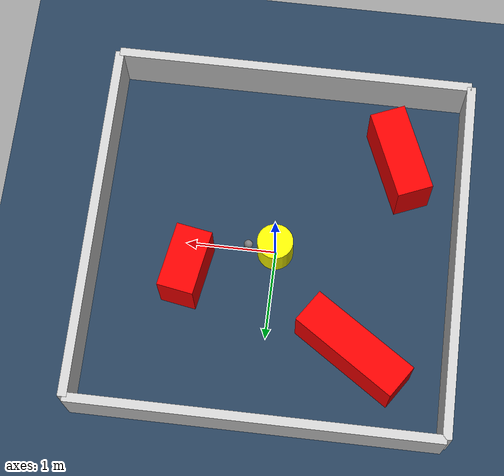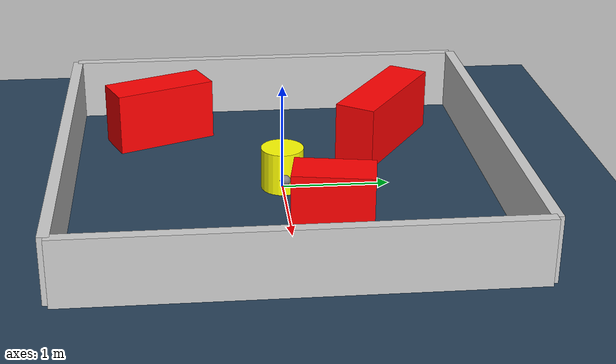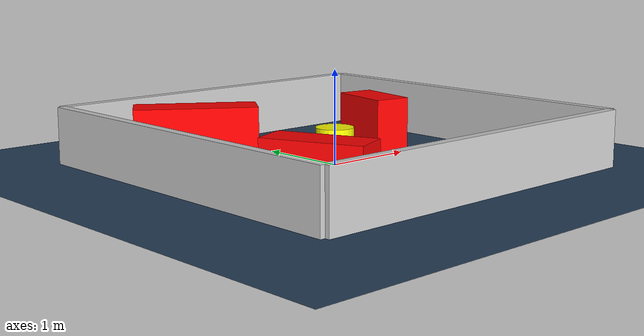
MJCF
<?xml version="1.0" ?>
<mujoco model="generated_environment">
  <option timestep="0.01" integrator="RK4" cone="elliptic"/>
  <default>
    <geom density="1"/>
  </default>
  <asset>
    <texture builtin="gradient" height="3072" rgb1="0.3 0.5 0.7" rgb2="0 0 0" type="skybox" width="512"/>
    <texture builtin="checker" height="300" mark="edge" markrgb="0.8 0.8 0.8" name="groundplane" rgb1="0.2 0.3 0.4" rgb2="0.1 0.2 0.3" type="2d" width="300"/>
    <material name="groundplane" reflectance="0.2" texrepeat="5 5" texture="groundplane" texuniform="true"/>
    <material name="robot" rgba="0.0 1.0 0.0 1"/>
  </asset>
  <worldbody>
    <light dir="0 0 -1" directional="true" pos="0 0 1.5"/>
    <geom condim="4" friction="1.0 0.005 0.001" material="groundplane" name="floor" size="0 0 0.05" type="plane"/>
    <body name="walls">
      <geom name="wall_1" condim="4" pos="-2.0 0.0 0.3" rgba="0.800000011920929 0.800000011920929 0.800000011920929 1.0" size="0.05 2.0 0.3" type="box"/>
      <geom name="wall_2" condim="4" pos="2.0 0.0 0.3" rgba="0.800000011920929 0.800000011920929 0.800000011920929 1.0" size="0.05 2.0 0.3" type="box"/>
      <geom name="wall_3" condim="4" pos="0.0 -2.0 0.3" rgba="0.800000011920929 0.800000011920929 0.800000011920929 1.0" size="2.0 0.05 0.3" type="box"/>
      <geom name="wall_4" condim="4" pos="0.0 2.0 0.3" rgba="0.800000011920929 0.800000011920929 0.800000011920929 1.0" size="2.0 0.05 0.3" type="box"/>
    </body>
    <body name="robot">
      <joint name="joint_x" type="slide" pos="0 0 0" axis="1 0 0"/>
      <joint name="joint_y" type="slide" pos="0 0 0" axis="0 1 0"/>
      <geom name="robot" type="sphere" pos="0.3 0.0 0.2" size="0.05" mass="5." friction="1.0 0.005 0.0001" condim="4" rgba="0.5 0.5 0.5 1.0"/>
      <site name="sensor_ball"/>
    </body>
    <body name="obstacle_movable_1">
      <geom name="obstacle_movable_1" condim="4" pos="0.0 0.0 0.2" euler="0 0 0.0" friction="1.0 0.005 0.001" rgba="1.0 1.0 0.0 1.0" size="0.2 0.2 0.0" type="cylinder" mass="0.1"/>
      <joint type="free"/>
    </body>
    <body name="obstacle_2_static">
      <geom name="obstacle_2_static" condim="4" pos="0.9380564384087322 0.3656833551058807 0.3" euler="0 0 80.10573056213147" friction="1.0 0.005 0.001" rgba="1 0 0 1" size="0.3611807956461413 0.2 0.3" type="box"/>
    </body>
    <body name="obstacle_3_static">
      <geom name="obstacle_3_static" condim="4" pos="-0.961264600118788 1.0943000566262484 0.3" euler="0 0 326.04340614901645" friction="1.0 0.005 0.001" rgba="1 0 0 1" size="0.6404749765460348 0.2 0.3" type="box"/>
    </body>
    <body name="obstacle_4_static">
      <geom name="obstacle_4_static" condim="4" pos="-1.274658776690446 -1.1461306201866517 0.3" euler="0 0 292.7193881785912" friction="1.0 0.005 0.001" rgba="1 0 0 1" size="0.5022312475246619 0.2 0.3" type="box"/>
    </body>
  </worldbody>
  <actuator>
    <motor name="actuator_x" joint="joint_x" gear="1" ctrlrange="-1 1"/>
    <motor name="actuator_y" joint="joint_y" gear="1" ctrlrange="-1 1"/>
  </actuator>
</mujoco>
